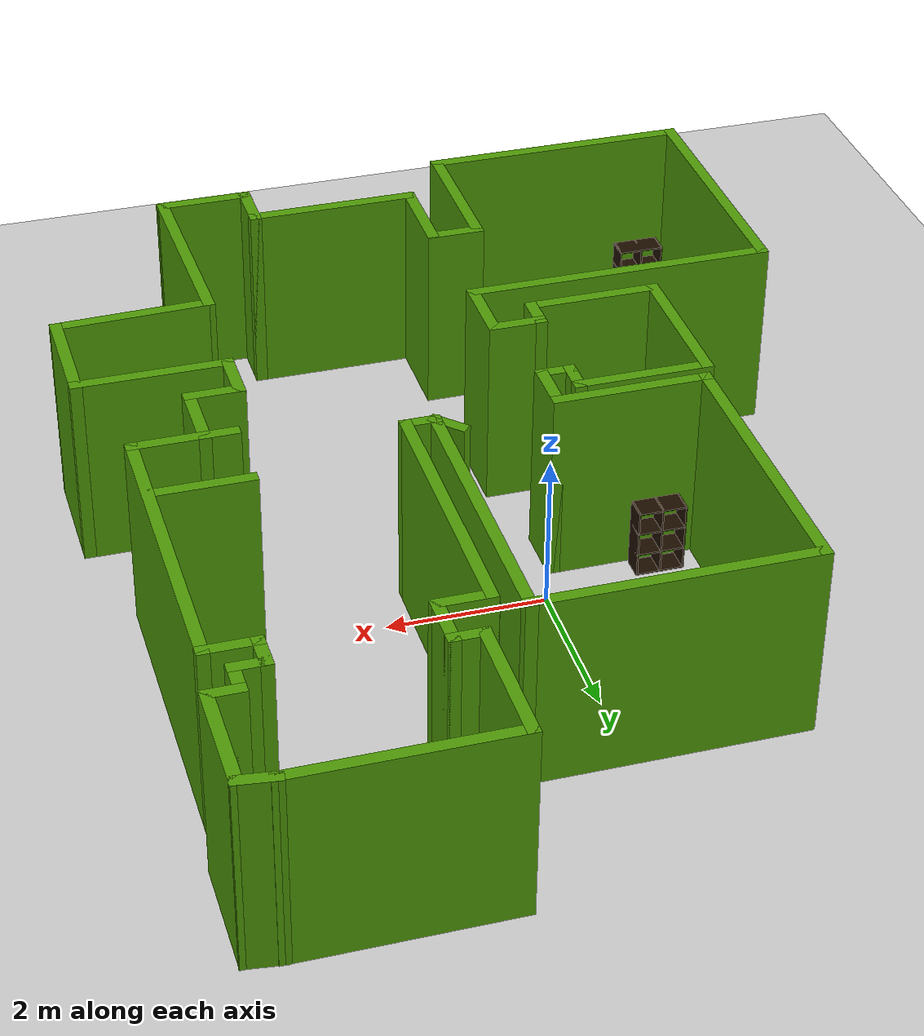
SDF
<sdf version="1.6">
 <world name="default">
  <light name="sun" type="directional">
   <pose>0 0 10 0 -0 0</pose>
   <diffuse>0.8 0.8 0.8 1</diffuse>
   <specular>0.2 0.2 0.2 1</specular>
   <attenuation>
    <range>1000</range>
    <constant>0.9</constant>
    <linear>0.01</linear>
    <quadratic>0.001</quadratic>
   </attenuation>
   <direction>-0.5 0.1 -0.9</direction>
  </light>
  <model name="ground_plane">
   <static>1</static>
   <link name="link">
    <collision name="collision">
     <geometry><plane><normal>0 0 1</normal><size>100 100</size></plane></geometry>
     <surface>
      <contact><collide_bitmask>65535</collide_bitmask></contact>
      <friction><ode><mu>100</mu><mu2>50</mu2></ode></friction>
     </surface>
    </collision>
    <visual name="visual">
     <cast_shadows>0</cast_shadows>
     <geometry><plane><normal>0 0 1</normal><size>100 100</size></plane></geometry>
     <material>
      <script><uri>file://media/materials/scripts/gazebo.material</uri><name>Gazebo/Grey</name></script>
     </material>
    </visual>
   </link>
  </model>
  <gravity>0 0 -9.8</gravity>
  <magnetic_field>6e-06 2.3e-05 -4.2e-05</magnetic_field>
  <atmosphere type="adiabatic"/>
  <physics name="default_physics" default="0" type="ode">
   <max_step_size>0.001</max_step_size>
   <real_time_factor>1</real_time_factor>
   <real_time_update_rate>1000</real_time_update_rate>
  </physics>
  <scene><ambient>0.4 0.4 0.4 1</ambient><background>0.7 0.7 0.7 1</background><shadows>1</shadows></scene>
  <audio><device>default</device></audio>
  <spherical_coordinates>
   <surface_model>EARTH_WGS84</surface_model>
   <latitude_deg>0</latitude_deg>
   <longitude_deg>0</longitude_deg>
   <elevation>0</elevation>
   <heading_deg>0</heading_deg>
  </spherical_coordinates>
  <model name="map_92">
   <pose>0.641816 -0.758731 0 0 -0 0</pose>
   <link name="Wall_0">
    <collision name="Wall_0_Collision">
     <geometry><box><size>2.75 0.15 2.5</size></box></geometry>
     <pose>0 0 1.25 0 -0 0</pose>
    </collision>
    <visual name="Wall_0_Visual">
     <pose>0 0 1.25 0 -0 0</pose>
     <geometry><box><size>2.75 0.15 2.5</size></box></geometry>
     <material>
      <script><uri>file://media/materials/scripts/gazebo.material</uri><name>Gazebo/Grey</name></script>
      <ambient>0.305882 0.603922 0.0235294 1</ambient>
     </material>
     <meta><layer>0</layer></meta>
    </visual>
    <pose>2.49906 5.74564 0 0 -0 3.14159</pose>
   </link>
   <link name="Wall_1">
    <collision name="Wall_1_Collision">
     <geometry><box><size>1.75 0.15 2.5</size></box></geometry>
     <pose>0 0 1.25 0 -0 0</pose>
    </collision>
    <visual name="Wall_1_Visual">
     <pose>0 0 1.25 0 -0 0</pose>
     <geometry><box><size>1.75 0.15 2.5</size></box></geometry>
     <material>
      <script><uri>file://media/materials/scripts/gazebo.material</uri><name>Gazebo/Grey</name></script>
      <ambient>0.305882 0.603922 0.0235294 1</ambient>
     </material>
     <meta><layer>0</layer></meta>
    </visual>
    <pose>1.19906 4.94564 0 0 -0 -1.5708</pose>
   </link>
   <link name="Wall_10">
    <collision name="Wall_10_Collision">
     <geometry><box><size>2 0.15 2.5</size></box></geometry>
     <pose>0 0 1.25 0 -0 0</pose>
    </collision>
    <visual name="Wall_10_Visual">
     <pose>0 0 1.25 0 -0 0</pose>
     <geometry><box><size>2 0.15 2.5</size></box></geometry>
     <material>
      <script><uri>file://media/materials/scripts/gazebo.material</uri><name>Gazebo/Grey</name></script>
      <ambient>0.305882 0.603922 0.0235294 1</ambient>
     </material>
     <meta><layer>0</layer></meta>
    </visual>
    <pose>-1.82594 0.195638 0 0 -0 0</pose>
   </link>
   <link name="Wall_11">
    <collision name="Wall_11_Collision">
     <geometry><box><size>0.75 0.15 2.5</size></box></geometry>
     <pose>0 0 1.25 0 -0 0</pose>
    </collision>
    <visual name="Wall_11_Visual">
     <pose>0 0 1.25 0 -0 0</pose>
     <geometry><box><size>0.75 0.15 2.5</size></box></geometry>
     <material>
      <script><uri>file://media/materials/scripts/gazebo.material</uri><name>Gazebo/Grey</name></script>
      <ambient>0.305882 0.603922 0.0235294 1</ambient>
     </material>
     <meta><layer>0</layer></meta>
    </visual>
    <pose>-0.900936 -0.104362 0 0 -0 -1.5708</pose>
   </link>
   <link name="Wall_12">
    <collision name="Wall_12_Collision">
     <geometry><box><size>0.5 0.15 2.5</size></box></geometry>
     <pose>0 0 1.25 0 -0 0</pose>
    </collision>
    <visual name="Wall_12_Visual">
     <pose>0 0 1.25 0 -0 0</pose>
     <geometry><box><size>0.5 0.15 2.5</size></box></geometry>
     <material>
      <script><uri>file://media/materials/scripts/gazebo.material</uri><name>Gazebo/Grey</name></script>
      <ambient>0.305882 0.603922 0.0235294 1</ambient>
     </material>
     <meta><layer>0</layer></meta>
    </visual>
    <pose>-1.07594 -0.404362 0 0 -0 3.14159</pose>
   </link>
   <link name="Wall_13">
    <collision name="Wall_13_Collision">
     <geometry><box><size>0.5 0.15 2.5</size></box></geometry>
     <pose>0 0 1.25 0 -0 0</pose>
    </collision>
    <visual name="Wall_13_Visual">
     <pose>0 0 1.25 0 -0 0</pose>
     <geometry><box><size>0.5 0.15 2.5</size></box></geometry>
     <material>
      <script><uri>file://media/materials/scripts/gazebo.material</uri><name>Gazebo/Grey</name></script>
      <ambient>0.305882 0.603922 0.0235294 1</ambient>
     </material>
     <meta><layer>0</layer></meta>
    </visual>
    <pose>-1.25094 -0.229362 0 0 -0 1.5708</pose>
   </link>
   <link name="Wall_14">
    <collision name="Wall_14_Collision">
     <geometry><box><size>1.75 0.15 2.5</size></box></geometry>
     <pose>0 0 1.25 0 -0 0</pose>
    </collision>
    <visual name="Wall_14_Visual">
     <pose>0 0 1.25 0 -0 0</pose>
     <geometry><box><size>1.75 0.15 2.5</size></box></geometry>
     <material>
      <script><uri>file://media/materials/scripts/gazebo.material</uri><name>Gazebo/Grey</name></script>
      <ambient>0.305882 0.603922 0.0235294 1</ambient>
     </material>
     <meta><layer>0</layer></meta>
    </visual>
    <pose>-2.05094 -0.054362 0 0 -0 3.14159</pose>
   </link>
   <link name="Wall_15">
    <collision name="Wall_15_Collision">
     <geometry><box><size>2 0.15 2.5</size></box></geometry>
     <pose>0 0 1.25 0 -0 0</pose>
    </collision>
    <visual name="Wall_15_Visual">
     <pose>0 0 1.25 0 -0 0</pose>
     <geometry><box><size>2 0.15 2.5</size></box></geometry>
     <material>
      <script><uri>file://media/materials/scripts/gazebo.material</uri><name>Gazebo/Grey</name></script>
      <ambient>0.305882 0.603922 0.0235294 1</ambient>
     </material>
     <meta><layer>0</layer></meta>
    </visual>
    <pose>-2.85094 -0.979362 0 0 -0 -1.5708</pose>
   </link>
   <link name="Wall_16">
    <collision name="Wall_16_Collision">
     <geometry><box><size>1.75 0.15 2.5</size></box></geometry>
     <pose>0 0 1.25 0 -0 0</pose>
    </collision>
    <visual name="Wall_16_Visual">
     <pose>0 0 1.25 0 -0 0</pose>
     <geometry><box><size>1.75 0.15 2.5</size></box></geometry>
     <material>
      <script><uri>file://media/materials/scripts/gazebo.material</uri><name>Gazebo/Grey</name></script>
      <ambient>0.305882 0.603922 0.0235294 1</ambient>
     </material>
     <meta><layer>0</layer></meta>
    </visual>
    <pose>-2.05094 -1.90436 0 0 -0 0</pose>
   </link>
   <link name="Wall_19">
    <collision name="Wall_19_Collision">
     <geometry><box><size>0.5 0.15 2.5</size></box></geometry>
     <pose>0 0 1.25 0 -0 0</pose>
    </collision>
    <visual name="Wall_19_Visual">
     <pose>0 0 1.25 0 -0 0</pose>
     <geometry><box><size>0.5 0.15 2.5</size></box></geometry>
     <material>
      <script><uri>file://media/materials/scripts/gazebo.material</uri><name>Gazebo/Grey</name></script>
      <ambient>0.305882 0.603922 0.0235294 1</ambient>
     </material>
     <meta><layer>0</layer></meta>
    </visual>
    <pose>-1.25094 -1.72936 0 0 -0 1.5708</pose>
   </link>
   <link name="Wall_2">
    <collision name="Wall_2_Collision">
     <geometry><box><size>0.5 0.15 2.5</size></box></geometry>
     <pose>0 0 1.25 0 -0 0</pose>
    </collision>
    <visual name="Wall_2_Visual">
     <pose>0 0 1.25 0 -0 0</pose>
     <geometry><box><size>0.5 0.15 2.5</size></box></geometry>
     <material>
      <script><uri>file://media/materials/scripts/gazebo.material</uri><name>Gazebo/Grey</name></script>
      <ambient>0.305882 0.603922 0.0235294 1</ambient>
     </material>
     <meta><layer>0</layer></meta>
    </visual>
    <pose>1.37406 4.14564 0 0 -0 0</pose>
   </link>
   <link name="Wall_20">
    <collision name="Wall_20_Collision">
     <geometry><box><size>0.75 0.15 2.5</size></box></geometry>
     <pose>0 0 1.25 0 -0 0</pose>
    </collision>
    <visual name="Wall_20_Visual">
     <pose>0 0 1.25 0 -0 0</pose>
     <geometry><box><size>0.75 0.15 2.5</size></box></geometry>
     <material>
      <script><uri>file://media/materials/scripts/gazebo.material</uri><name>Gazebo/Grey</name></script>
      <ambient>0.305882 0.603922 0.0235294 1</ambient>
     </material>
     <meta><layer>0</layer></meta>
    </visual>
    <pose>-0.950936 -1.55436 0 0 -0 0</pose>
   </link>
   <link name="Wall_21">
    <collision name="Wall_21_Collision">
     <geometry><box><size>1 0.15 2.5</size></box></geometry>
     <pose>0 0 1.25 0 -0 0</pose>
    </collision>
    <visual name="Wall_21_Visual">
     <pose>0 0 1.25 0 -0 0</pose>
     <geometry><box><size>1 0.15 2.5</size></box></geometry>
     <material>
      <script><uri>file://media/materials/scripts/gazebo.material</uri><name>Gazebo/Grey</name></script>
      <ambient>0.305882 0.603922 0.0235294 1</ambient>
     </material>
     <meta><layer>0</layer></meta>
    </visual>
    <pose>-0.650936 -1.97936 0 0 -0 -1.5708</pose>
   </link>
   <link name="Wall_29">
    <collision name="Wall_29_Collision">
     <geometry><box><size>0.75 0.15 2.5</size></box></geometry>
     <pose>0 0 1.25 0 -0 0</pose>
    </collision>
    <visual name="Wall_29_Visual">
     <pose>0 0 1.25 0 -0 0</pose>
     <geometry><box><size>0.75 0.15 2.5</size></box></geometry>
     <material>
      <script><uri>file://media/materials/scripts/gazebo.material</uri><name>Gazebo/Grey</name></script>
      <ambient>0.305882 0.603922 0.0235294 1</ambient>
     </material>
     <meta><layer>0</layer></meta>
    </visual>
    <pose>1.54906 -5.30436 0 0 -0 -1.5708</pose>
   </link>
   <link name="Wall_3">
    <collision name="Wall_3_Collision">
     <geometry><box><size>0.75 0.15 2.5</size></box></geometry>
     <pose>0 0 1.25 0 -0 0</pose>
    </collision>
    <visual name="Wall_3_Visual">
     <pose>0 0 1.25 0 -0 0</pose>
     <geometry><box><size>0.75 0.15 2.5</size></box></geometry>
     <material>
      <script><uri>file://media/materials/scripts/gazebo.material</uri><name>Gazebo/Grey</name></script>
      <ambient>0.305882 0.603922 0.0235294 1</ambient>
     </material>
     <meta><layer>0</layer></meta>
    </visual>
    <pose>1.54906 3.84564 0 0 -0 -1.5708</pose>
   </link>
   <link name="Wall_30">
    <collision name="Wall_30_Collision">
     <geometry><box><size>1.25 0.15 2.5</size></box></geometry>
     <pose>0 0 1.25 0 -0 0</pose>
    </collision>
    <visual name="Wall_30_Visual">
     <pose>0 0 1.25 0 -0 0</pose>
     <geometry><box><size>1.25 0.15 2.5</size></box></geometry>
     <material>
      <script><uri>file://media/materials/scripts/gazebo.material</uri><name>Gazebo/Grey</name></script>
      <ambient>0.305882 0.603922 0.0235294 1</ambient>
     </material>
     <meta><layer>0</layer></meta>
    </visual>
    <pose>2.09906 -5.60436 0 0 -0 0</pose>
   </link>
   <link name="Wall_31">
    <collision name="Wall_31_Collision">
     <geometry><box><size>2.68956 0.15 2.5</size></box></geometry>
     <pose>0 0 1.25 0 -0 0</pose>
    </collision>
    <visual name="Wall_31_Visual">
     <pose>0 0 1.25 0 -0 0</pose>
     <geometry><box><size>2.68956 0.15 2.5</size></box></geometry>
     <material>
      <script><uri>file://media/materials/scripts/gazebo.material</uri><name>Gazebo/Grey</name></script>
      <ambient>0.305882 0.603922 0.0235294 1</ambient>
     </material>
     <meta><layer>0</layer></meta>
    </visual>
    <pose>2.61847 -4.33495 0 0 -0 1.59489</pose>
   </link>
   <link name="Wall_32">
    <collision name="Wall_32_Collision">
     <geometry><box><size>2.06118 0.15 2.5</size></box></geometry>
     <pose>0 0 1.25 0 -0 0</pose>
    </collision>
    <visual name="Wall_32_Visual">
     <pose>0 0 1.25 0 -0 0</pose>
     <geometry><box><size>2.06118 0.15 2.5</size></box></geometry>
     <material>
      <script><uri>file://media/materials/scripts/gazebo.material</uri><name>Gazebo/Grey</name></script>
      <ambient>0.305882 0.603922 0.0235294 1</ambient>
     </material>
     <meta><layer>0</layer></meta>
    </visual>
    <pose>3.54347 -3.03495 0 0 -0 0.032001</pose>
   </link>
   <link name="Wall_33">
    <collision name="Wall_33_Collision">
     <geometry><box><size>1.5 0.15 2.5</size></box></geometry>
     <pose>0 0 1.25 0 -0 0</pose>
    </collision>
    <visual name="Wall_33_Visual">
     <pose>0 0 1.25 0 -0 0</pose>
     <geometry><box><size>1.5 0.15 2.5</size></box></geometry>
     <material>
      <script><uri>file://media/materials/scripts/gazebo.material</uri><name>Gazebo/Grey</name></script>
      <ambient>0.305882 0.603922 0.0235294 1</ambient>
     </material>
     <meta><layer>0</layer></meta>
    </visual>
    <pose>4.49906 -2.32936 0 0 -0 1.5708</pose>
   </link>
   <link name="Wall_34">
    <collision name="Wall_34_Collision">
     <geometry><box><size>2 0.15 2.5</size></box></geometry>
     <pose>0 0 1.25 0 -0 0</pose>
    </collision>
    <visual name="Wall_34_Visual">
     <pose>0 0 1.25 0 -0 0</pose>
     <geometry><box><size>2 0.15 2.5</size></box></geometry>
     <material>
      <script><uri>file://media/materials/scripts/gazebo.material</uri><name>Gazebo/Grey</name></script>
      <ambient>0.305882 0.603922 0.0235294 1</ambient>
     </material>
     <meta><layer>0</layer></meta>
    </visual>
    <pose>3.57406 -1.65436 0 0 -0 3.14159</pose>
   </link>
   <link name="Wall_35">
    <collision name="Wall_35_Collision">
     <geometry><box><size>0.75 0.15 2.5</size></box></geometry>
     <pose>0 0 1.25 0 -0 0</pose>
    </collision>
    <visual name="Wall_35_Visual">
     <pose>0 0 1.25 0 -0 0</pose>
     <geometry><box><size>0.75 0.15 2.5</size></box></geometry>
     <material>
      <script><uri>file://media/materials/scripts/gazebo.material</uri><name>Gazebo/Grey</name></script>
      <ambient>0.305882 0.603922 0.0235294 1</ambient>
     </material>
     <meta><layer>0</layer></meta>
    </visual>
    <pose>2.64906 -1.35436 0 0 -0 1.5708</pose>
   </link>
   <link name="Wall_36">
    <collision name="Wall_36_Collision">
     <geometry><box><size>0.75 0.15 2.5</size></box></geometry>
     <pose>0 0 1.25 0 -0 0</pose>
    </collision>
    <visual name="Wall_36_Visual">
     <pose>0 0 1.25 0 -0 0</pose>
     <geometry><box><size>0.75 0.15 2.5</size></box></geometry>
     <material>
      <script><uri>file://media/materials/scripts/gazebo.material</uri><name>Gazebo/Grey</name></script>
      <ambient>0.305882 0.603922 0.0235294 1</ambient>
     </material>
     <meta><layer>0</layer></meta>
    </visual>
    <pose>2.94906 -1.05436 0 0 -0 0</pose>
   </link>
   <link name="Wall_37">
    <collision name="Wall_37_Collision">
     <geometry><box><size>1 0.15 2.5</size></box></geometry>
     <pose>0 0 1.25 0 -0 0</pose>
    </collision>
    <visual name="Wall_37_Visual">
     <pose>0 0 1.25 0 -0 0</pose>
     <geometry><box><size>1 0.15 2.5</size></box></geometry>
     <material>
      <script><uri>file://media/materials/scripts/gazebo.material</uri><name>Gazebo/Grey</name></script>
      <ambient>0.305882 0.603922 0.0235294 1</ambient>
     </material>
     <meta><layer>0</layer></meta>
    </visual>
    <pose>3.24906 -0.629362 0 0 -0 1.5708</pose>
   </link>
   <link name="Wall_38">
    <collision name="Wall_38_Collision">
     <geometry><box><size>1 0.15 2.5</size></box></geometry>
     <pose>0 0 1.25 0 -0 0</pose>
    </collision>
    <visual name="Wall_38_Visual">
     <pose>0 0 1.25 0 -0 0</pose>
     <geometry><box><size>1 0.15 2.5</size></box></geometry>
     <material>
      <script><uri>file://media/materials/scripts/gazebo.material</uri><name>Gazebo/Grey</name></script>
      <ambient>0.305882 0.603922 0.0235294 1</ambient>
     </material>
     <meta><layer>0</layer></meta>
    </visual>
    <pose>3.67406 -0.204362 0 0 -0 0</pose>
   </link>
   <link name="Wall_39">
    <collision name="Wall_39_Collision">
     <geometry><box><size>4 0.15 2.5</size></box></geometry>
     <pose>0 0 1.25 0 -0 0</pose>
    </collision>
    <visual name="Wall_39_Visual">
     <pose>0 0 1.25 0 -0 0</pose>
     <geometry><box><size>4 0.15 2.5</size></box></geometry>
     <material>
      <script><uri>file://media/materials/scripts/gazebo.material</uri><name>Gazebo/Grey</name></script>
      <ambient>0.305882 0.603922 0.0235294 1</ambient>
     </material>
     <meta><layer>0</layer></meta>
    </visual>
    <pose>4.09906 1.72064 0 0 -0 1.5708</pose>
   </link>
   <link name="Wall_4">
    <collision name="Wall_4_Collision">
     <geometry><box><size>0.75 0.15 2.5</size></box></geometry>
     <pose>0 0 1.25 0 -0 0</pose>
    </collision>
    <visual name="Wall_4_Visual">
     <pose>0 0 1.25 0 -0 0</pose>
     <geometry><box><size>0.75 0.15 2.5</size></box></geometry>
     <material>
      <script><uri>file://media/materials/scripts/gazebo.material</uri><name>Gazebo/Grey</name></script>
      <ambient>0.305882 0.603922 0.0235294 1</ambient>
     </material>
     <meta><layer>0</layer></meta>
    </visual>
    <pose>1.24906 3.54564 0 0 -0 3.14159</pose>
   </link>
   <link name="Wall_40">
    <collision name="Wall_40_Collision">
     <geometry><box><size>0.75 0.15 2.5</size></box></geometry>
     <pose>0 0 1.25 0 -0 0</pose>
    </collision>
    <visual name="Wall_40_Visual">
     <pose>0 0 1.25 0 -0 0</pose>
     <geometry><box><size>0.75 0.15 2.5</size></box></geometry>
     <material>
      <script><uri>file://media/materials/scripts/gazebo.material</uri><name>Gazebo/Grey</name></script>
      <ambient>0.305882 0.603922 0.0235294 1</ambient>
     </material>
     <meta><layer>0</layer></meta>
    </visual>
    <pose>3.79906 3.64564 0 0 -0 3.14159</pose>
   </link>
   <link name="Wall_41">
    <collision name="Wall_41_Collision">
     <geometry><box><size>0.5 0.15 2.5</size></box></geometry>
     <pose>0 0 1.25 0 -0 0</pose>
    </collision>
    <visual name="Wall_41_Visual">
     <pose>0 0 1.25 0 -0 0</pose>
     <geometry><box><size>0.5 0.15 2.5</size></box></geometry>
     <material>
      <script><uri>file://media/materials/scripts/gazebo.material</uri><name>Gazebo/Grey</name></script>
      <ambient>0.305882 0.603922 0.0235294 1</ambient>
     </material>
     <meta><layer>0</layer></meta>
    </visual>
    <pose>3.49906 3.82064 0 0 -0 1.5708</pose>
   </link>
   <link name="Wall_42">
    <collision name="Wall_42_Collision">
     <geometry><box><size>0.5 0.15 2.5</size></box></geometry>
     <pose>0 0 1.25 0 -0 0</pose>
    </collision>
    <visual name="Wall_42_Visual">
     <pose>0 0 1.25 0 -0 0</pose>
     <geometry><box><size>0.5 0.15 2.5</size></box></geometry>
     <material>
      <script><uri>file://media/materials/scripts/gazebo.material</uri><name>Gazebo/Grey</name></script>
      <ambient>0.305882 0.603922 0.0235294 1</ambient>
     </material>
     <meta><layer>0</layer></meta>
    </visual>
    <pose>3.67406 3.99564 0 0 -0 0</pose>
   </link>
   <link name="Wall_43">
    <collision name="Wall_43_Collision">
     <geometry><box><size>0.5 0.15 2.5</size></box></geometry>
     <pose>0 0 1.25 0 -0 0</pose>
    </collision>
    <visual name="Wall_43_Visual">
     <pose>0 0 1.25 0 -0 0</pose>
     <geometry><box><size>0.5 0.15 2.5</size></box></geometry>
     <material>
      <script><uri>file://media/materials/scripts/gazebo.material</uri><name>Gazebo/Grey</name></script>
      <ambient>0.305882 0.603922 0.0235294 1</ambient>
     </material>
     <meta><layer>0</layer></meta>
    </visual>
    <pose>3.84906 4.17064 0 0 -0 1.5708</pose>
   </link>
   <link name="Wall_44">
    <collision name="Wall_44_Collision">
     <geometry><box><size>0.5 0.15 2.5</size></box></geometry>
     <pose>0 0 1.25 0 -0 0</pose>
    </collision>
    <visual name="Wall_44_Visual">
     <pose>0 0 1.25 0 -0 0</pose>
     <geometry><box><size>0.5 0.15 2.5</size></box></geometry>
     <material>
      <script><uri>file://media/materials/scripts/gazebo.material</uri><name>Gazebo/Grey</name></script>
      <ambient>0.305882 0.603922 0.0235294 1</ambient>
     </material>
     <meta><layer>0</layer></meta>
    </visual>
    <pose>4.02406 4.34564 0 0 -0 0</pose>
   </link>
   <link name="Wall_45">
    <collision name="Wall_45_Collision">
     <geometry><box><size>1.5 0.15 2.5</size></box></geometry>
     <pose>0 0 1.25 0 -0 0</pose>
    </collision>
    <visual name="Wall_45_Visual">
     <pose>0 0 1.25 0 -0 0</pose>
     <geometry><box><size>1.5 0.15 2.5</size></box></geometry>
     <material>
      <script><uri>file://media/materials/scripts/gazebo.material</uri><name>Gazebo/Grey</name></script>
      <ambient>0.305882 0.603922 0.0235294 1</ambient>
     </material>
     <meta><layer>0</layer></meta>
    </visual>
    <pose>4.19906 5.02064 0 0 -0 1.5708</pose>
   </link>
   <link name="Wall_46">
    <collision name="Wall_46_Collision">
     <geometry><box><size>0.553113 0.15 2.5</size></box></geometry>
     <pose>0 0 1.25 0 -0 0</pose>
    </collision>
    <visual name="Wall_46_Visual">
     <pose>0 0 1.25 0 -0 0</pose>
     <geometry><box><size>0.553113 0.15 2.5</size></box></geometry>
     <material>
      <script><uri>file://media/materials/scripts/gazebo.material</uri><name>Gazebo/Grey</name></script>
      <ambient>0.305882 0.603922 0.0235294 1</ambient>
     </material>
     <meta><layer>0</layer></meta>
    </visual>
    <pose>3.99906 5.72064 0 0 -0 3.01724</pose>
   </link>
   <link name="Wall_49">
    <collision name="Wall_49_Collision">
     <geometry><box><size>4 0.15 2.5</size></box></geometry>
     <pose>0 0 1.25 0 -0 0</pose>
    </collision>
    <visual name="Wall_49_Visual">
     <pose>0 0 1.25 0 -0 0</pose>
     <geometry><box><size>4 0.15 2.5</size></box></geometry>
     <material>
      <script><uri>file://media/materials/scripts/gazebo.material</uri><name>Gazebo/Grey</name></script>
      <ambient>0.305882 0.603922 0.0235294 1</ambient>
     </material>
     <meta><layer>0</layer></meta>
    </visual>
    <pose>-2.57594 -2.40436 0 0 -0 3.14159</pose>
   </link>
   <link name="Wall_5">
    <collision name="Wall_5_Collision">
     <geometry><box><size>3.5 0.15 2.5</size></box></geometry>
     <pose>0 0 1.25 0 -0 0</pose>
    </collision>
    <visual name="Wall_5_Visual">
     <pose>0 0 1.25 0 -0 0</pose>
     <geometry><box><size>3.5 0.15 2.5</size></box></geometry>
     <material>
      <script><uri>file://media/materials/scripts/gazebo.material</uri><name>Gazebo/Grey</name></script>
      <ambient>0.305882 0.603922 0.0235294 1</ambient>
     </material>
     <meta><layer>0</layer></meta>
    </visual>
    <pose>0.949064 1.87064 0 0 -0 -1.5708</pose>
   </link>
   <link name="Wall_50">
    <collision name="Wall_50_Collision">
     <geometry><box><size>3.5 0.15 2.5</size></box></geometry>
     <pose>0 0 1.25 0 -0 0</pose>
    </collision>
    <visual name="Wall_50_Visual">
     <pose>0 0 1.25 0 -0 0</pose>
     <geometry><box><size>3.5 0.15 2.5</size></box></geometry>
     <material>
      <script><uri>file://media/materials/scripts/gazebo.material</uri><name>Gazebo/Grey</name></script>
      <ambient>0.305882 0.603922 0.0235294 1</ambient>
     </material>
     <meta><layer>0</layer></meta>
    </visual>
    <pose>-4.50094 -4.07936 0 0 -0 -1.5708</pose>
   </link>
   <link name="Wall_51">
    <collision name="Wall_51_Collision">
     <geometry><box><size>3.5 0.15 2.5</size></box></geometry>
     <pose>0 0 1.25 0 -0 0</pose>
    </collision>
    <visual name="Wall_51_Visual">
     <pose>0 0 1.25 0 -0 0</pose>
     <geometry><box><size>3.5 0.15 2.5</size></box></geometry>
     <material>
      <script><uri>file://media/materials/scripts/gazebo.material</uri><name>Gazebo/Grey</name></script>
      <ambient>0.305882 0.603922 0.0235294 1</ambient>
     </material>
     <meta><layer>0</layer></meta>
    </visual>
    <pose>-2.82594 -5.75436 0 0 -0 0</pose>
   </link>
   <link name="Wall_52">
    <collision name="Wall_52_Collision">
     <geometry><box><size>2 0.15 2.5</size></box></geometry>
     <pose>0 0 1.25 0 -0 0</pose>
    </collision>
    <visual name="Wall_52_Visual">
     <pose>0 0 1.25 0 -0 0</pose>
     <geometry><box><size>2 0.15 2.5</size></box></geometry>
     <material>
      <script><uri>file://media/materials/scripts/gazebo.material</uri><name>Gazebo/Grey</name></script>
      <ambient>0.305882 0.603922 0.0235294 1</ambient>
     </material>
     <meta><layer>0</layer></meta>
    </visual>
    <pose>-1.15094 -4.82936 0 0 -0 1.5708</pose>
   </link>
   <link name="Wall_53">
    <collision name="Wall_53_Collision">
     <geometry><box><size>0.75 0.15 2.5</size></box></geometry>
     <pose>0 0 1.25 0 -0 0</pose>
    </collision>
    <visual name="Wall_53_Visual">
     <pose>0 0 1.25 0 -0 0</pose>
     <geometry><box><size>0.75 0.15 2.5</size></box></geometry>
     <material>
      <script><uri>file://media/materials/scripts/gazebo.material</uri><name>Gazebo/Grey</name></script>
      <ambient>0.305882 0.603922 0.0235294 1</ambient>
     </material>
     <meta><layer>0</layer></meta>
    </visual>
    <pose>-0.850936 -3.90436 0 0 -0 0</pose>
   </link>
   <link name="Wall_54">
    <collision name="Wall_54_Collision">
     <geometry><box><size>1.25 0.15 2.5</size></box></geometry>
     <pose>0 0 1.25 0 -0 0</pose>
    </collision>
    <visual name="Wall_54_Visual">
     <pose>0 0 1.25 0 -0 0</pose>
     <geometry><box><size>1.25 0.15 2.5</size></box></geometry>
     <material>
      <script><uri>file://media/materials/scripts/gazebo.material</uri><name>Gazebo/Grey</name></script>
      <ambient>0.305882 0.603922 0.0235294 1</ambient>
     </material>
     <meta><layer>0</layer></meta>
    </visual>
    <pose>-0.550936 -4.45436 0 0 -0 -1.5708</pose>
   </link>
   <link name="Wall_57">
    <collision name="Wall_57_Collision">
     <geometry><box><size>2.25 0.15 2.5</size></box></geometry>
     <pose>0 0 1.25 0 -0 0</pose>
    </collision>
    <visual name="Wall_57_Visual">
     <pose>0 0 1.25 0 -0 0</pose>
     <geometry><box><size>2.25 0.15 2.5</size></box></geometry>
     <material>
      <script><uri>file://media/materials/scripts/gazebo.material</uri><name>Gazebo/Grey</name></script>
      <ambient>0.305882 0.603922 0.0235294 1</ambient>
     </material>
     <meta><layer>0</layer></meta>
    </visual>
    <pose>0.499064 -5.00436 0 0 -0 0</pose>
   </link>
   <link name="Wall_6">
    <collision name="Wall_6_Collision">
     <geometry><box><size>0.5 0.15 2.5</size></box></geometry>
     <pose>0 0 1.25 0 -0 0</pose>
    </collision>
    <visual name="Wall_6_Visual">
     <pose>0 0 1.25 0 -0 0</pose>
     <geometry><box><size>0.5 0.15 2.5</size></box></geometry>
     <material>
      <script><uri>file://media/materials/scripts/gazebo.material</uri><name>Gazebo/Grey</name></script>
      <ambient>0.305882 0.603922 0.0235294 1</ambient>
     </material>
     <meta><layer>0</layer></meta>
    </visual>
    <pose>0.774064 0.195638 0 0 -0 3.14159</pose>
   </link>
   <link name="Wall_62">
    <collision name="Wall_62_Collision">
     <geometry><box><size>1.25 0.15 2.5</size></box></geometry>
     <pose>0 0 1.25 0 -0 0</pose>
    </collision>
    <visual name="Wall_62_Visual">
     <pose>0 0 1.25 0 -0 0</pose>
     <geometry><box><size>1.25 0.15 2.5</size></box></geometry>
     <material>
      <script><uri>file://media/materials/scripts/gazebo.material</uri><name>Gazebo/Grey</name></script>
      <ambient>0.305882 0.603922 0.0235294 1</ambient>
     </material>
     <meta><layer>0</layer></meta>
    </visual>
    <pose>3.46195 0.759431 0 0 -0 0</pose>
   </link>
   <link name="Wall_66">
    <collision name="Wall_66_Collision">
     <geometry><box><size>0.5 0.15 2.5</size></box></geometry>
     <pose>0 0 1.25 0 -0 0</pose>
    </collision>
    <visual name="Wall_66_Visual">
     <pose>0 0 1.25 0 -0 0</pose>
     <geometry><box><size>0.5 0.15 2.5</size></box></geometry>
     <material>
      <script><uri>file://media/materials/scripts/gazebo.material</uri><name>Gazebo/Grey</name></script>
      <ambient>0.305882 0.603922 0.0235294 1</ambient>
     </material>
     <meta><layer>0</layer></meta>
    </visual>
    <pose>0.475321 0.319382 0 0 -0 2.35619</pose>
   </link>
   <link name="Wall_68">
    <collision name="Wall_68_Collision">
     <geometry><box><size>0.5 0.15 2.5</size></box></geometry>
     <pose>0 0 1.25 0 -0 0</pose>
    </collision>
    <visual name="Wall_68_Visual">
     <pose>0 0 1.25 0 -0 0</pose>
     <geometry><box><size>0.5 0.15 2.5</size></box></geometry>
     <material>
      <script><uri>file://media/materials/scripts/gazebo.material</uri><name>Gazebo/Grey</name></script>
      <ambient>0.305882 0.603922 0.0235294 1</ambient>
     </material>
     <meta><layer>0</layer></meta>
    </visual>
    <pose>3.07406 -0.204362 0 0 -0 3.14159</pose>
   </link>
   <link name="Wall_7">
    <collision name="Wall_7_Collision">
     <geometry><box><size>3.75 0.15 2.5</size></box></geometry>
     <pose>0 0 1.25 0 -0 0</pose>
    </collision>
    <visual name="Wall_7_Visual">
     <pose>0 0 1.25 0 -0 0</pose>
     <geometry><box><size>3.75 0.15 2.5</size></box></geometry>
     <material>
      <script><uri>file://media/materials/scripts/gazebo.material</uri><name>Gazebo/Grey</name></script>
      <ambient>0.305882 0.603922 0.0235294 1</ambient>
     </material>
     <meta><layer>0</layer></meta>
    </visual>
    <pose>0.599064 1.99564 0 0 -0 1.5708</pose>
   </link>
   <link name="Wall_8">
    <collision name="Wall_8_Collision">
     <geometry><box><size>3.5 0.15 2.5</size></box></geometry>
     <pose>0 0 1.25 0 -0 0</pose>
    </collision>
    <visual name="Wall_8_Visual">
     <pose>0 0 1.25 0 -0 0</pose>
     <geometry><box><size>3.5 0.15 2.5</size></box></geometry>
     <material>
      <script><uri>file://media/materials/scripts/gazebo.material</uri><name>Gazebo/Grey</name></script>
      <ambient>0.305882 0.603922 0.0235294 1</ambient>
     </material>
     <meta><layer>0</layer></meta>
    </visual>
    <pose>-1.07594 3.79564 0 0 -0 3.14159</pose>
   </link>
   <link name="Wall_9">
    <collision name="Wall_9_Collision">
     <geometry><box><size>3.75 0.15 2.5</size></box></geometry>
     <pose>0 0 1.25 0 -0 0</pose>
    </collision>
    <visual name="Wall_9_Visual">
     <pose>0 0 1.25 0 -0 0</pose>
     <geometry><box><size>3.75 0.15 2.5</size></box></geometry>
     <material>
      <script><uri>file://media/materials/scripts/gazebo.material</uri><name>Gazebo/Grey</name></script>
      <ambient>0.305882 0.603922 0.0235294 1</ambient>
     </material>
     <meta><layer>0</layer></meta>
    </visual>
    <pose>-2.75094 1.99564 0 0 -0 -1.5708</pose>
   </link>
   <static>1</static>
  </model>
  <model name="cabinet">
   <static>1</static>
   <link name="cabinet_bottom_plate">
    <inertial>
     <pose>0 0 -1 0 -0 0</pose>
     <inertia><ixx>2.05</ixx><ixy>0</ixy><ixz>0</ixz><iyy>2.05</iyy><iyz>0</iyz><izz>2.05</izz></inertia>
     <mass>25</mass>
    </inertial>
    <collision name="cabinet_bottom_plate_geom">
     <pose>0 0 0.01 0 -0 0</pose>
     <geometry><box><size>0.45 0.45 0.02</size></box></geometry>
    </collision>
    <visual name="cabinet_bottom_plate_geom_visual">
     <pose>0 0 0.01 0 -0 0</pose>
     <geometry><box><size>0.45 0.45 0.02</size></box></geometry>
     <material>
      <script><uri>file://media/materials/scripts/gazebo.material</uri><name>Gazebo/Wood</name></script>
     </material>
    </visual>
    <collision name="cabinet_bottom_plate_geom_cabinet_back_plate">
     <pose>0.235 0 0.51 0 -0 0</pose>
     <geometry><box><size>0.02 0.45 1.02</size></box></geometry>
    </collision>
    <visual name="cabinet_bottom_plate_geom_cabinet_back_plate_visual">
     <pose>0.235 0 0.51 0 -0 0</pose>
     <geometry><box><size>0.02 0.45 1.02</size></box></geometry>
     <material>
      <script><uri>file://media/materials/scripts/gazebo.material</uri><name>Gazebo/Wood</name></script>
     </material>
    </visual>
    <collision name="cabinet_bottom_plate_geom_cabinet_left_plate">
     <pose>0 0.235 0.51 0 -0 0</pose>
     <geometry><box><size>0.45 0.02 1.02</size></box></geometry>
    </collision>
    <visual name="cabinet_bottom_plate_geom_cabinet_left_plate_visual">
     <pose>0 0.235 0.51 0 -0 0</pose>
     <geometry><box><size>0.45 0.02 1.02</size></box></geometry>
     <material>
      <script><uri>file://media/materials/scripts/gazebo.material</uri><name>Gazebo/Wood</name></script>
     </material>
    </visual>
    <collision name="cabinet_bottom_plate_geom_cabinet_middle_plate">
     <pose>0 0 0.51 0 -0 0</pose>
     <geometry><box><size>0.45 0.45 0.02</size></box></geometry>
    </collision>
    <visual name="cabinet_bottom_plate_geom_cabinet_middle_plate_visual">
     <pose>0 0 0.51 0 -0 0</pose>
     <geometry><box><size>0.45 0.45 0.02</size></box></geometry>
     <material>
      <script><uri>file://media/materials/scripts/gazebo.material</uri><name>Gazebo/Wood</name></script>
     </material>
    </visual>
    <collision name="cabinet_bottom_plate_geom_cabinet_right_plate">
     <pose>0 -0.235 0.51 0 -0 0</pose>
     <geometry><box><size>0.45 0.02 1.02</size></box></geometry>
    </collision>
    <visual name="cabinet_bottom_plate_geom_cabinet_right_plate_visual">
     <pose>0 -0.235 0.51 0 -0 0</pose>
     <geometry><box><size>0.45 0.02 1.02</size></box></geometry>
     <material>
      <script><uri>file://media/materials/scripts/gazebo.material</uri><name>Gazebo/Wood</name></script>
     </material>
    </visual>
    <collision name="cabinet_bottom_plate_geom_cabinet_top_plate">
     <pose>0 0 1.01 0 -0 0</pose>
     <geometry><box><size>0.45 0.45 0.02</size></box></geometry>
    </collision>
    <visual name="cabinet_bottom_plate_geom_cabinet_top_plate_visual">
     <pose>0 0 1.01 0 -0 0</pose>
     <geometry><box><size>0.45 0.45 0.02</size></box></geometry>
     <material>
      <script><uri>file://media/materials/scripts/gazebo.material</uri><name>Gazebo/Wood</name></script>
     </material>
    </visual>
   </link>
   <pose>-1.64999 2.64019 0 0 -0 0</pose>
  </model>
  <model name="cabinet_0">
   <static>1</static>
   <link name="cabinet_bottom_plate">
    <inertial>
     <pose>0 0 -1 0 -0 0</pose>
     <inertia><ixx>2.05</ixx><ixy>0</ixy><ixz>0</ixz><iyy>2.05</iyy><iyz>0</iyz><izz>2.05</izz></inertia>
     <mass>25</mass>
    </inertial>
    <collision name="cabinet_bottom_plate_geom">
     <pose>0 0 0.01 0 -0 0</pose>
     <geometry><box><size>0.45 0.45 0.02</size></box></geometry>
    </collision>
    <visual name="cabinet_bottom_plate_geom_visual">
     <pose>0 0 0.01 0 -0 0</pose>
     <geometry><box><size>0.45 0.45 0.02</size></box></geometry>
     <material>
      <script><uri>file://media/materials/scripts/gazebo.material</uri><name>Gazebo/Wood</name></script>
     </material>
    </visual>
    <collision name="cabinet_bottom_plate_geom_cabinet_back_plate">
     <pose>0.235 0 0.51 0 -0 0</pose>
     <geometry><box><size>0.02 0.45 1.02</size></box></geometry>
    </collision>
    <visual name="cabinet_bottom_plate_geom_cabinet_back_plate_visual">
     <pose>0.235 0 0.51 0 -0 0</pose>
     <geometry><box><size>0.02 0.45 1.02</size></box></geometry>
     <material>
      <script><uri>file://media/materials/scripts/gazebo.material</uri><name>Gazebo/Wood</name></script>
     </material>
    </visual>
    <collision name="cabinet_bottom_plate_geom_cabinet_left_plate">
     <pose>0 0.235 0.51 0 -0 0</pose>
     <geometry><box><size>0.45 0.02 1.02</size></box></geometry>
    </collision>
    <visual name="cabinet_bottom_plate_geom_cabinet_left_plate_visual">
     <pose>0 0.235 0.51 0 -0 0</pose>
     <geometry><box><size>0.45 0.02 1.02</size></box></geometry>
     <material>
      <script><uri>file://media/materials/scripts/gazebo.material</uri><name>Gazebo/Wood</name></script>
     </material>
    </visual>
    <collision name="cabinet_bottom_plate_geom_cabinet_middle_plate">
     <pose>0 0 0.51 0 -0 0</pose>
     <geometry><box><size>0.45 0.45 0.02</size></box></geometry>
    </collision>
    <visual name="cabinet_bottom_plate_geom_cabinet_middle_plate_visual">
     <pose>0 0 0.51 0 -0 0</pose>
     <geometry><box><size>0.45 0.45 0.02</size></box></geometry>
     <material>
      <script><uri>file://media/materials/scripts/gazebo.material</uri><name>Gazebo/Wood</name></script>
     </material>
    </visual>
    <collision name="cabinet_bottom_plate_geom_cabinet_right_plate">
     <pose>0 -0.235 0.51 0 -0 0</pose>
     <geometry><box><size>0.45 0.02 1.02</size></box></geometry>
    </collision>
    <visual name="cabinet_bottom_plate_geom_cabinet_right_plate_visual">
     <pose>0 -0.235 0.51 0 -0 0</pose>
     <geometry><box><size>0.45 0.02 1.02</size></box></geometry>
     <material>
      <script><uri>file://media/materials/scripts/gazebo.material</uri><name>Gazebo/Wood</name></script>
     </material>
    </visual>
    <collision name="cabinet_bottom_plate_geom_cabinet_top_plate">
     <pose>0 0 1.01 0 -0 0</pose>
     <geometry><box><size>0.45 0.45 0.02</size></box></geometry>
    </collision>
    <visual name="cabinet_bottom_plate_geom_cabinet_top_plate_visual">
     <pose>0 0 1.01 0 -0 0</pose>
     <geometry><box><size>0.45 0.45 0.02</size></box></geometry>
     <material>
      <script><uri>file://media/materials/scripts/gazebo.material</uri><name>Gazebo/Wood</name></script>
     </material>
    </visual>
   </link>
   <pose>0.817042 2.7512 0 0 -0 0</pose>
  </model>
  <model name="6_Cube_StorageE">
   <link name="Wall_0">
    <pose>0 0 0.01 0 -0 0</pose>
    <inertial>
     <mass>1.6201</mass>
     <inertia><ixx>0.0119</ixx><iyy>0.0631</iyy><izz>0.0513</izz><ixy>0</ixy><ixz>0</ixz><iyz>0</iyz></inertia>
    </inertial>
    <collision name="Wall_0_Collision"><geometry><box><size>0.616 0.296 0.02</size></box></geometry></collision>
    <visual name="Wall_0_Visual">
     <geometry><box><size>0.616 0.296 0.02</size></box></geometry>
     <material>
      <script><uri>file://media/materials/scripts/gazebo.material</uri><name>Gazebo/Grey</name></script>
      <ambient>0.105882 0.0509804 0 1</ambient>
     </material>
    </visual>
   </link>
   <joint name="0_2" type="fixed">
    <pose>-0.308 0 0 0 -0 0</pose>
    <parent>Wall_2</parent>
    <child>Wall_0</child>
    <axis>
     <xyz>1 0 0</xyz>
     <use_parent_model_frame>0</use_parent_model_frame>
     <limit><lower>-1e+16</lower><upper>1e+16</upper></limit>
    </axis>
   </joint>
   <joint name="0_12" type="fixed">
    <parent>Wall_12</parent>
    <child>Wall_0</child>
    <axis>
     <xyz>0 0 1</xyz>
     <use_parent_model_frame>0</use_parent_model_frame>
     <limit><lower>-1e+16</lower><upper>1e+16</upper></limit>
    </axis>
   </joint>
   <joint name="0_4" type="fixed">
    <pose>0.308 0 0 0 -0 0</pose>
    <parent>Wall_4</parent>
    <child>Wall_0</child>
    <axis>
     <xyz>1 0 0</xyz>
     <use_parent_model_frame>0</use_parent_model_frame>
     <limit><lower>-1e+16</lower><upper>1e+16</upper></limit>
    </axis>
   </joint>
   <link name="Wall_10">
    <pose>0 0 0.61 0 -0 0</pose>
    <inertial>
     <mass>1.6201</mass>
     <inertia><ixx>0.0119</ixx><iyy>0.0631</iyy><izz>0.0513</izz><ixy>0</ixy><ixz>0</ixz><iyz>0</iyz></inertia>
    </inertial>
    <collision name="Wall_10_Collision"><geometry><box><size>0.616 0.296 0.02</size></box></geometry></collision>
    <visual name="Wall_10_Visual">
     <geometry><box><size>0.616 0.296 0.02</size></box></geometry>
     <material>
      <script><uri>file://media/materials/scripts/gazebo.material</uri><name>Gazebo/Grey</name></script>
      <ambient>0.105882 0.0509804 0 1</ambient>
     </material>
    </visual>
   </link>
   <joint name="10_2" type="fixed">
    <pose>-0.308 0 0 0 -0 0</pose>
    <parent>Wall_2</parent>
    <child>Wall_10</child>
    <axis>
     <xyz>1 0 0</xyz>
     <use_parent_model_frame>0</use_parent_model_frame>
     <limit><lower>-1e+16</lower><upper>1e+16</upper></limit>
    </axis>
   </joint>
   <joint name="10_12" type="fixed">
    <parent>Wall_12</parent>
    <child>Wall_10</child>
    <axis>
     <xyz>0 0 1</xyz>
     <use_parent_model_frame>0</use_parent_model_frame>
     <limit><lower>-1e+16</lower><upper>1e+16</upper></limit>
    </axis>
   </joint>
   <joint name="10_4" type="fixed">
    <pose>0.308 0 0 0 -0 0</pose>
    <parent>Wall_4</parent>
    <child>Wall_10</child>
    <axis>
     <xyz>1 0 0</xyz>
     <use_parent_model_frame>0</use_parent_model_frame>
     <limit><lower>-1e+16</lower><upper>1e+16</upper></limit>
    </axis>
   </joint>
   <link name="Wall_12">
    <pose>0 0 0.4575 0 -0 0</pose>
    <inertial>
     <mass>2.4065</mass>
     <inertia><ixx>0.0177</ixx><iyy>0.1855</iyy><izz>0.168</izz><ixy>0</ixy><ixz>0</ixz><iyz>0</iyz></inertia>
    </inertial>
    <collision name="Wall_12_Collision"><geometry><box><size>0.02 0.296 0.915</size></box></geometry></collision>
    <visual name="Wall_12_Visual">
     <geometry><box><size>0.02 0.296 0.915</size></box></geometry>
     <material>
      <script><uri>file://media/materials/scripts/gazebo.material</uri><name>Gazebo/Grey</name></script>
      <ambient>0.105882 0.0509804 0 1</ambient>
     </material>
    </visual>
   </link>
   <link name="Wall_2">
    <pose>-0.298 0 0.4575 0 -0 0</pose>
    <inertial>
     <mass>2.4065</mass>
     <inertia><ixx>0.0177</ixx><iyy>0.1855</iyy><izz>0.168</izz><ixy>0</ixy><ixz>0</ixz><iyz>0</iyz></inertia>
    </inertial>
    <collision name="Wall_2_Collision"><geometry><box><size>0.02 0.296 0.915</size></box></geometry></collision>
    <visual name="Wall_2_Visual">
     <geometry><box><size>0.02 0.296 0.915</size></box></geometry>
     <material>
      <script><uri>file://media/materials/scripts/gazebo.material</uri><name>Gazebo/Grey</name></script>
      <ambient>0.105882 0.0509804 0 1</ambient>
     </material>
    </visual>
   </link>
   <link name="Wall_4">
    <pose>0.298 0 0.4575 0 -0 0</pose>
    <inertial>
     <mass>2.4065</mass>
     <inertia><ixx>0.0177</ixx><iyy>0.1855</iyy><izz>0.168</izz><ixy>0</ixy><ixz>0</ixz><iyz>0</iyz></inertia>
    </inertial>
    <collision name="Wall_4_Collision"><geometry><box><size>0.02 0.296 0.915</size></box></geometry></collision>
    <visual name="Wall_4_Visual">
     <geometry><box><size>0.02 0.296 0.915</size></box></geometry>
     <material>
      <script><uri>file://media/materials/scripts/gazebo.material</uri><name>Gazebo/Grey</name></script>
      <ambient>0.105882 0.0509804 0 1</ambient>
     </material>
    </visual>
   </link>
   <link name="Wall_6">
    <pose>0 0 0.905 0 -0 0</pose>
    <inertial>
     <mass>1.6201</mass>
     <inertia><ixx>0.0119</ixx><iyy>0.0631</iyy><izz>0.0513</izz><ixy>0</ixy><ixz>0</ixz><iyz>0</iyz></inertia>
    </inertial>
    <collision name="Wall_6_Collision"><geometry><box><size>0.616 0.296 0.02</size></box></geometry></collision>
    <visual name="Wall_6_Visual">
     <geometry><box><size>0.616 0.296 0.02</size></box></geometry>
     <material>
      <script><uri>file://media/materials/scripts/gazebo.material</uri><name>Gazebo/Grey</name></script>
      <ambient>0.105882 0.0509804 0 1</ambient>
     </material>
    </visual>
   </link>
   <joint name="6_2" type="fixed">
    <pose>-0.308 0 0 0 -0 0</pose>
    <parent>Wall_2</parent>
    <child>Wall_6</child>
    <axis>
     <xyz>2 0 0</xyz>
     <use_parent_model_frame>0</use_parent_model_frame>
     <limit><lower>-1e+16</lower><upper>1e+16</upper></limit>
    </axis>
   </joint>
   <joint name="6_12" type="fixed">
    <parent>Wall_12</parent>
    <child>Wall_6</child>
    <axis>
     <xyz>0 0 1</xyz>
     <use_parent_model_frame>0</use_parent_model_frame>
     <limit><lower>-1e+16</lower><upper>1e+16</upper></limit>
    </axis>
   </joint>
   <joint name="6_4" type="fixed">
    <pose>0.308 0 0 0 -0 0</pose>
    <parent>Wall_4</parent>
    <child>Wall_6</child>
    <axis>
     <xyz>1 0 0</xyz>
     <use_parent_model_frame>0</use_parent_model_frame>
     <limit><lower>-1e+16</lower><upper>1e+16</upper></limit>
    </axis>
   </joint>
   <link name="Wall_8">
    <pose>0 0 0.305 0 -0 0</pose>
    <inertial>
     <mass>1.6201</mass>
     <inertia><ixx>0.0119</ixx><iyy>0.0631</iyy><izz>0.0513</izz><ixy>0</ixy><ixz>0</ixz><iyz>0</iyz></inertia>
    </inertial>
    <collision name="Wall_8_Collision"><geometry><box><size>0.616 0.296 0.02</size></box></geometry></collision>
    <visual name="Wall_8_Visual">
     <geometry><box><size>0.616 0.296 0.02</size></box></geometry>
     <material>
      <script><uri>file://media/materials/scripts/gazebo.material</uri><name>Gazebo/Grey</name></script>
      <ambient>0.105882 0.0509804 0 1</ambient>
     </material>
    </visual>
   </link>
   <joint name="8_2" type="fixed">
    <pose>-0.308 0 0 0 -0 0</pose>
    <parent>Wall_2</parent>
    <child>Wall_8</child>
    <axis>
     <xyz>1 0 0</xyz>
     <use_parent_model_frame>0</use_parent_model_frame>
     <limit><lower>-1e+16</lower><upper>1e+16</upper></limit>
    </axis>
   </joint>
   <joint name="8_12" type="fixed">
    <parent>Wall_12</parent>
    <child>Wall_8</child>
    <axis>
     <xyz>0 0 1</xyz>
     <use_parent_model_frame>0</use_parent_model_frame>
     <limit><lower>-1e+16</lower><upper>1e+16</upper></limit>
    </axis>
   </joint>
   <joint name="8_4" type="fixed">
    <pose>0.308 0 0 0 -0 0</pose>
    <parent>Wall_4</parent>
    <child>Wall_8</child>
    <axis>
     <xyz>1 0 0</xyz>
     <use_parent_model_frame>0</use_parent_model_frame>
     <limit><lower>-1e+16</lower><upper>1e+16</upper></limit>
    </axis>
   </joint>
   <static>1</static>
   <pose>-3.37945 -6.25989 0 0 -0 0</pose>
  </model>
  <model name="6_Cube_StorageE_0">
   <link name="Wall_0">
    <pose>0 0 0.01 0 -0 0</pose>
    <inertial>
     <mass>1.6201</mass>
     <inertia><ixx>0.0119</ixx><iyy>0.0631</iyy><izz>0.0513</izz><ixy>0</ixy><ixz>0</ixz><iyz>0</iyz></inertia>
    </inertial>
    <collision name="Wall_0_Collision"><geometry><box><size>0.616 0.296 0.02</size></box></geometry></collision>
    <visual name="Wall_0_Visual">
     <geometry><box><size>0.616 0.296 0.02</size></box></geometry>
     <material>
      <script><uri>file://media/materials/scripts/gazebo.material</uri><name>Gazebo/Grey</name></script>
      <ambient>0.105882 0.0509804 0 1</ambient>
     </material>
    </visual>
   </link>
   <joint name="0_2" type="fixed">
    <pose>-0.308 0 0 0 -0 0</pose>
    <parent>Wall_2</parent>
    <child>Wall_0</child>
    <axis>
     <xyz>1 0 0</xyz>
     <use_parent_model_frame>0</use_parent_model_frame>
     <limit><lower>-1e+16</lower><upper>1e+16</upper></limit>
    </axis>
   </joint>
   <joint name="0_12" type="fixed">
    <parent>Wall_12</parent>
    <child>Wall_0</child>
    <axis>
     <xyz>0 0 1</xyz>
     <use_parent_model_frame>0</use_parent_model_frame>
     <limit><lower>-1e+16</lower><upper>1e+16</upper></limit>
    </axis>
   </joint>
   <joint name="0_4" type="fixed">
    <pose>0.308 0 0 0 -0 0</pose>
    <parent>Wall_4</parent>
    <child>Wall_0</child>
    <axis>
     <xyz>1 0 0</xyz>
     <use_parent_model_frame>0</use_parent_model_frame>
     <limit><lower>-1e+16</lower><upper>1e+16</upper></limit>
    </axis>
   </joint>
   <link name="Wall_10">
    <pose>0 0 0.61 0 -0 0</pose>
    <inertial>
     <mass>1.6201</mass>
     <inertia><ixx>0.0119</ixx><iyy>0.0631</iyy><izz>0.0513</izz><ixy>0</ixy><ixz>0</ixz><iyz>0</iyz></inertia>
    </inertial>
    <collision name="Wall_10_Collision"><geometry><box><size>0.616 0.296 0.02</size></box></geometry></collision>
    <visual name="Wall_10_Visual">
     <geometry><box><size>0.616 0.296 0.02</size></box></geometry>
     <material>
      <script><uri>file://media/materials/scripts/gazebo.material</uri><name>Gazebo/Grey</name></script>
      <ambient>0.105882 0.0509804 0 1</ambient>
     </material>
    </visual>
   </link>
   <joint name="10_2" type="fixed">
    <pose>-0.308 0 0 0 -0 0</pose>
    <parent>Wall_2</parent>
    <child>Wall_10</child>
    <axis>
     <xyz>1 0 0</xyz>
     <use_parent_model_frame>0</use_parent_model_frame>
     <limit><lower>-1e+16</lower><upper>1e+16</upper></limit>
    </axis>
   </joint>
   <joint name="10_12" type="fixed">
    <parent>Wall_12</parent>
    <child>Wall_10</child>
    <axis>
     <xyz>0 0 1</xyz>
     <use_parent_model_frame>0</use_parent_model_frame>
     <limit><lower>-1e+16</lower><upper>1e+16</upper></limit>
    </axis>
   </joint>
   <joint name="10_4" type="fixed">
    <pose>0.308 0 0 0 -0 0</pose>
    <parent>Wall_4</parent>
    <child>Wall_10</child>
    <axis>
     <xyz>1 0 0</xyz>
     <use_parent_model_frame>0</use_parent_model_frame>
     <limit><lower>-1e+16</lower><upper>1e+16</upper></limit>
    </axis>
   </joint>
   <link name="Wall_12">
    <pose>0 0 0.4575 0 -0 0</pose>
    <inertial>
     <mass>2.4065</mass>
     <inertia><ixx>0.0177</ixx><iyy>0.1855</iyy><izz>0.168</izz><ixy>0</ixy><ixz>0</ixz><iyz>0</iyz></inertia>
    </inertial>
    <collision name="Wall_12_Collision"><geometry><box><size>0.02 0.296 0.915</size></box></geometry></collision>
    <visual name="Wall_12_Visual">
     <geometry><box><size>0.02 0.296 0.915</size></box></geometry>
     <material>
      <script><uri>file://media/materials/scripts/gazebo.material</uri><name>Gazebo/Grey</name></script>
      <ambient>0.105882 0.0509804 0 1</ambient>
     </material>
    </visual>
   </link>
   <link name="Wall_2">
    <pose>-0.298 0 0.4575 0 -0 0</pose>
    <inertial>
     <mass>2.4065</mass>
     <inertia><ixx>0.0177</ixx><iyy>0.1855</iyy><izz>0.168</izz><ixy>0</ixy><ixz>0</ixz><iyz>0</iyz></inertia>
    </inertial>
    <collision name="Wall_2_Collision"><geometry><box><size>0.02 0.296 0.915</size></box></geometry></collision>
    <visual name="Wall_2_Visual">
     <geometry><box><size>0.02 0.296 0.915</size></box></geometry>
     <material>
      <script><uri>file://media/materials/scripts/gazebo.material</uri><name>Gazebo/Grey</name></script>
      <ambient>0.105882 0.0509804 0 1</ambient>
     </material>
    </visual>
   </link>
   <link name="Wall_4">
    <pose>0.298 0 0.4575 0 -0 0</pose>
    <inertial>
     <mass>2.4065</mass>
     <inertia><ixx>0.0177</ixx><iyy>0.1855</iyy><izz>0.168</izz><ixy>0</ixy><ixz>0</ixz><iyz>0</iyz></inertia>
    </inertial>
    <collision name="Wall_4_Collision"><geometry><box><size>0.02 0.296 0.915</size></box></geometry></collision>
    <visual name="Wall_4_Visual">
     <geometry><box><size>0.02 0.296 0.915</size></box></geometry>
     <material>
      <script><uri>file://media/materials/scripts/gazebo.material</uri><name>Gazebo/Grey</name></script>
      <ambient>0.105882 0.0509804 0 1</ambient>
     </material>
    </visual>
   </link>
   <link name="Wall_6">
    <pose>0 0 0.905 0 -0 0</pose>
    <inertial>
     <mass>1.6201</mass>
     <inertia><ixx>0.0119</ixx><iyy>0.0631</iyy><izz>0.0513</izz><ixy>0</ixy><ixz>0</ixz><iyz>0</iyz></inertia>
    </inertial>
    <collision name="Wall_6_Collision"><geometry><box><size>0.616 0.296 0.02</size></box></geometry></collision>
    <visual name="Wall_6_Visual">
     <geometry><box><size>0.616 0.296 0.02</size></box></geometry>
     <material>
      <script><uri>file://media/materials/scripts/gazebo.material</uri><name>Gazebo/Grey</name></script>
      <ambient>0.105882 0.0509804 0 1</ambient>
     </material>
    </visual>
   </link>
   <joint name="6_2" type="fixed">
    <pose>-0.308 0 0 0 -0 0</pose>
    <parent>Wall_2</parent>
    <child>Wall_6</child>
    <axis>
     <xyz>2 0 0</xyz>
     <use_parent_model_frame>0</use_parent_model_frame>
     <limit><lower>-1e+16</lower><upper>1e+16</upper></limit>
    </axis>
   </joint>
   <joint name="6_12" type="fixed">
    <parent>Wall_12</parent>
    <child>Wall_6</child>
    <axis>
     <xyz>0 0 1</xyz>
     <use_parent_model_frame>0</use_parent_model_frame>
     <limit><lower>-1e+16</lower><upper>1e+16</upper></limit>
    </axis>
   </joint>
   <joint name="6_4" type="fixed">
    <pose>0.308 0 0 0 -0 0</pose>
    <parent>Wall_4</parent>
    <child>Wall_6</child>
    <axis>
     <xyz>1 0 0</xyz>
     <use_parent_model_frame>0</use_parent_model_frame>
     <limit><lower>-1e+16</lower><upper>1e+16</upper></limit>
    </axis>
   </joint>
   <link name="Wall_8">
    <pose>0 0 0.305 0 -0 0</pose>
    <inertial>
     <mass>1.6201</mass>
     <inertia><ixx>0.0119</ixx><iyy>0.0631</iyy><izz>0.0513</izz><ixy>0</ixy><ixz>0</ixz><iyz>0</iyz></inertia>
    </inertial>
    <collision name="Wall_8_Collision"><geometry><box><size>0.616 0.296 0.02</size></box></geometry></collision>
    <visual name="Wall_8_Visual">
     <geometry><box><size>0.616 0.296 0.02</size></box></geometry>
     <material>
      <script><uri>file://media/materials/scripts/gazebo.material</uri><name>Gazebo/Grey</name></script>
      <ambient>0.105882 0.0509804 0 1</ambient>
     </material>
    </visual>
   </link>
   <joint name="8_2" type="fixed">
    <pose>-0.308 0 0 0 -0 0</pose>
    <parent>Wall_2</parent>
    <child>Wall_8</child>
    <axis>
     <xyz>1 0 0</xyz>
     <use_parent_model_frame>0</use_parent_model_frame>
     <limit><lower>-1e+16</lower><upper>1e+16</upper></limit>
    </axis>
   </joint>
   <joint name="8_12" type="fixed">
    <parent>Wall_12</parent>
    <child>Wall_8</child>
    <axis>
     <xyz>0 0 1</xyz>
     <use_parent_model_frame>0</use_parent_model_frame>
     <limit><lower>-1e+16</lower><upper>1e+16</upper></limit>
    </axis>
   </joint>
   <joint name="8_4" type="fixed">
    <pose>0.308 0 0 0 -0 0</pose>
    <parent>Wall_4</parent>
    <child>Wall_8</child>
    <axis>
     <xyz>1 0 0</xyz>
     <use_parent_model_frame>0</use_parent_model_frame>
     <limit><lower>-1e+16</lower><upper>1e+16</upper></limit>
    </axis>
   </joint>
   <static>1</static>
   <pose>-1.52002 -0.311127 0 0 -0 0</pose>
  </model>
 </world>
</sdf>
